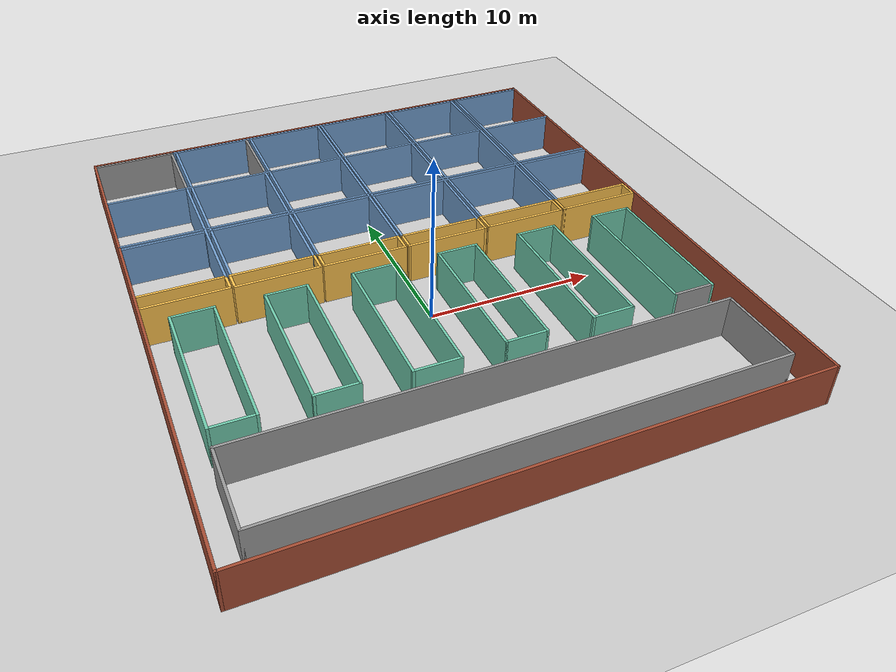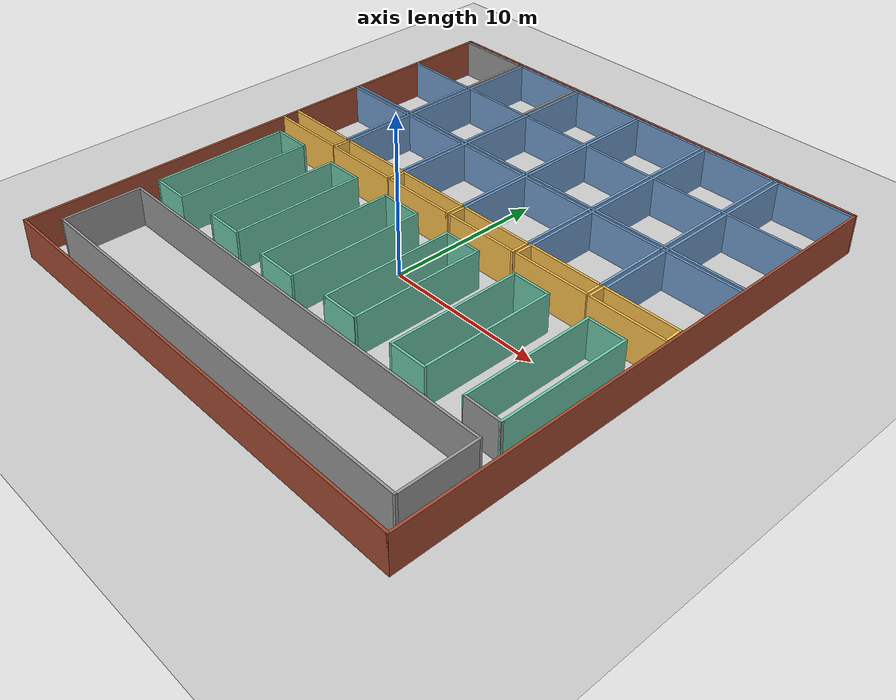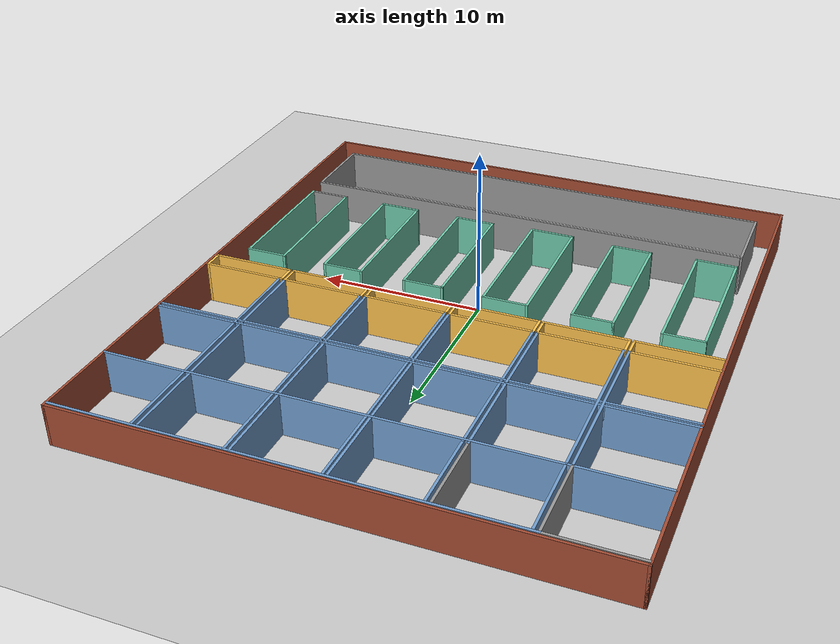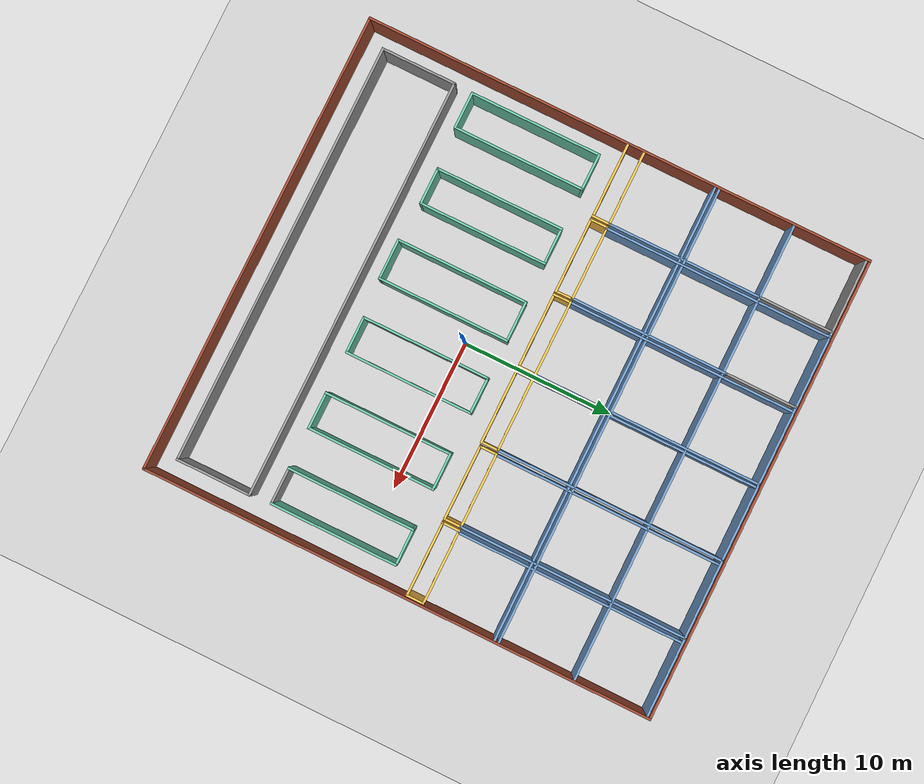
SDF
<sdf version="1.7">
 <world name="default">
  <light name="sun" type="directional">
   <pose>0 0 10 0 -0 0</pose>
   <diffuse>0.8 0.8 0.8 1</diffuse>
   <specular>0.2 0.2 0.2 1</specular>
   <attenuation>
    <range>1000</range>
    <constant>0.9</constant>
    <linear>0.01</linear>
    <quadratic>0.001</quadratic>
   </attenuation>
   <direction>-0.5 0.1 -0.9</direction>
   <spot><inner_angle>0</inner_angle><outer_angle>0</outer_angle><falloff>0</falloff></spot>
  </light>
  <model name="ground_plane">
   <static>1</static>
   <link name="link">
    <collision name="collision">
     <geometry><plane><normal>0 0 1</normal><size>100 100</size></plane></geometry>
     <surface>
      <contact><collide_bitmask>65535</collide_bitmask></contact>
      <friction><ode><mu>100</mu><mu2>50</mu2></ode></friction>
     </surface>
    </collision>
    <visual name="visual">
     <cast_shadows>0</cast_shadows>
     <geometry><plane><normal>0 0 1</normal><size>100 100</size></plane></geometry>
     <material>
      <script><uri>file://media/materials/scripts/gazebo.material</uri><name>Gazebo/Grey</name></script>
     </material>
    </visual>
   </link>
  </model>
  <gravity>0 0 -9.8</gravity>
  <magnetic_field>6e-06 2.3e-05 -4.2e-05</magnetic_field>
  <atmosphere type="adiabatic"/>
  <physics type="ode">
   <max_step_size>0.001</max_step_size>
   <real_time_factor>1</real_time_factor>
   <real_time_update_rate>1000</real_time_update_rate>
  </physics>
  <scene><ambient>0.4 0.4 0.4 1</ambient><background>0.7 0.7 0.7 1</background><shadows>1</shadows></scene>
  <spherical_coordinates>
   <surface_model>EARTH_WGS84</surface_model>
   <latitude_deg>0</latitude_deg>
   <longitude_deg>0</longitude_deg>
   <elevation>0</elevation>
   <heading_deg>0</heading_deg>
  </spherical_coordinates>
  <model name="Logic_Warehouse_Rev2">
   <pose>0.098061 2.99943 0 0 -0 0</pose>
   <link name="Wall_0">
    <collision name="Wall_0_Collision">
     <geometry><box><size>30.75 0.15 2.5</size></box></geometry>
     <pose>0 0 1.25 0 -0 0</pose>
    </collision>
    <visual name="Wall_0_Visual">
     <pose>0 0 1.25 0 -0 0</pose>
     <geometry><box><size>30.75 0.15 2.5</size></box></geometry>
     <material>
      <script><uri>file://media/materials/scripts/gazebo.material</uri><name>Gazebo/Bricks</name></script>
      <ambient>1 1 1 1</ambient>
     </material>
     <meta><layer>0</layer></meta>
    </visual>
    <pose>0 16.925 0 0 -0 0</pose>
   </link>
   <link name="Wall_104">
    <collision name="Wall_104_Collision">
     <geometry><box><size>25.75 0.15 2.5</size></box></geometry>
     <pose>0 0 1.25 0 -0 0</pose>
    </collision>
    <visual name="Wall_104_Visual">
     <pose>0 0 1.25 0 -0 0</pose>
     <geometry><box><size>25.75 0.15 2.5</size></box></geometry>
     <material>
      <script><uri>file://media/materials/scripts/gazebo.material</uri><name>Gazebo/Grey</name></script>
      <ambient>0.447059 0.623529 0.811765 1</ambient>
     </material>
     <meta><layer>0</layer></meta>
    </visual>
    <pose>2.42928 11.8671 0 0 -0 0</pose>
   </link>
   <link name="Wall_106">
    <collision name="Wall_106_Collision">
     <geometry><box><size>25.75 0.15 2.5</size></box></geometry>
     <pose>0 0 1.25 0 -0 0</pose>
    </collision>
    <visual name="Wall_106_Visual">
     <pose>0 0 1.25 0 -0 0</pose>
     <geometry><box><size>25.75 0.15 2.5</size></box></geometry>
     <material>
      <script><uri>file://media/materials/scripts/gazebo.material</uri><name>Gazebo/Grey</name></script>
      <ambient>0.447059 0.623529 0.811765 1</ambient>
     </material>
     <meta><layer>0</layer></meta>
    </visual>
    <pose>2.42928 16.7171 0 0 -0 0</pose>
   </link>
   <link name="Wall_108">
    <collision name="Wall_108_Collision">
     <geometry><box><size>5 0.15 2.5</size></box></geometry>
     <pose>0 0 1.25 0 -0 0</pose>
    </collision>
    <visual name="Wall_108_Visual">
     <pose>0 0 1.25 0 -0 0</pose>
     <geometry><box><size>5 0.15 2.5</size></box></geometry>
     <material>
      <script><uri>file://media/materials/scripts/gazebo.material</uri><name>Gazebo/Grey</name></script>
      <ambient>1 1 1 1</ambient>
     </material>
     <meta><layer>0</layer></meta>
    </visual>
    <pose>-12.7957 16.7171 0 0 -0 3.14159</pose>
   </link>
   <link name="Wall_11">
    <collision name="Wall_11_Collision">
     <geometry><box><size>28 0.15 2.5</size></box></geometry>
     <pose>0 0 1.25 0 -0 0</pose>
    </collision>
    <visual name="Wall_11_Visual">
     <pose>0 0 1.25 0 -0 0</pose>
     <geometry><box><size>28 0.15 2.5</size></box></geometry>
     <material>
      <script><uri>file://media/materials/scripts/gazebo.material</uri><name>Gazebo/Grey</name></script>
      <ambient>1 1 1 1</ambient>
     </material>
     <meta><layer>0</layer></meta>
    </visual>
    <pose>-0.02098 -10.509 0 0 -0 0</pose>
   </link>
   <link name="Wall_110">
    <collision name="Wall_110_Collision">
     <geometry><box><size>5.02332 0.15 2.5</size></box></geometry>
     <pose>0 0 1.25 0 -0 0</pose>
    </collision>
    <visual name="Wall_110_Visual">
     <pose>0 0 1.25 0 -0 0</pose>
     <geometry><box><size>5.02332 0.15 2.5</size></box></geometry>
     <material>
      <script><uri>file://media/materials/scripts/gazebo.material</uri><name>Gazebo/Grey</name></script>
      <ambient>0.447059 0.623529 0.811765 1</ambient>
     </material>
     <meta><layer>0</layer></meta>
    </visual>
    <pose>-10.0548 14.2794 0 0 -0 -1.5708</pose>
   </link>
   <link name="Wall_112">
    <collision name="Wall_112_Collision">
     <geometry><box><size>4.75 0.15 2.5</size></box></geometry>
     <pose>0 0 1.25 0 -0 0</pose>
    </collision>
    <visual name="Wall_112_Visual">
     <pose>0 0 1.25 0 -0 0</pose>
     <geometry><box><size>4.75 0.15 2.5</size></box></geometry>
     <material>
      <script><uri>file://media/materials/scripts/gazebo.material</uri><name>Gazebo/Grey</name></script>
      <ambient>0.447059 0.623529 0.811765 1</ambient>
     </material>
     <meta><layer>0</layer></meta>
    </visual>
    <pose>-5.00284 14.2706 0 0 -0 -1.5708</pose>
   </link>
   <link name="Wall_116">
    <collision name="Wall_116_Collision">
     <geometry><box><size>4.75 0.15 2.5</size></box></geometry>
     <pose>0 0 1.25 0 -0 0</pose>
    </collision>
    <visual name="Wall_116_Visual">
     <pose>0 0 1.25 0 -0 0</pose>
     <geometry><box><size>4.75 0.15 2.5</size></box></geometry>
     <material>
      <script><uri>file://media/materials/scripts/gazebo.material</uri><name>Gazebo/Grey</name></script>
      <ambient>1 1 1 1</ambient>
     </material>
     <meta><layer>0</layer></meta>
    </visual>
    <pose>-5.29983 14.3528 0 0 -0 -1.5708</pose>
   </link>
   <link name="Wall_118">
    <collision name="Wall_118_Collision">
     <geometry><box><size>10.2737 0.15 2.5</size></box></geometry>
     <pose>0 0 1.25 0 -0 0</pose>
    </collision>
    <visual name="Wall_118_Visual">
     <pose>0 0 1.25 0 -0 0</pose>
     <geometry><box><size>10.2737 0.15 2.5</size></box></geometry>
     <material>
      <script><uri>file://media/materials/scripts/gazebo.material</uri><name>Gazebo/Grey</name></script>
      <ambient>0.447059 0.623529 0.811765 1</ambient>
     </material>
     <meta><layer>0</layer></meta>
    </visual>
    <pose>-10.3642 6.80521 0 0 -0 -1.56951</pose>
   </link>
   <link name="Wall_12">
    <collision name="Wall_12_Collision">
     <geometry><box><size>5 0.15 2.5</size></box></geometry>
     <pose>0 0 1.25 0 -0 0</pose>
    </collision>
    <visual name="Wall_12_Visual">
     <pose>0 0 1.25 0 -0 0</pose>
     <geometry><box><size>5 0.15 2.5</size></box></geometry>
     <material>
      <script><uri>file://media/materials/scripts/gazebo.material</uri><name>Gazebo/Grey</name></script>
      <ambient>1 1 1 1</ambient>
     </material>
     <meta><layer>0</layer></meta>
    </visual>
    <pose>13.904 -12.934 0 0 -0 -1.5708</pose>
   </link>
   <link name="Wall_120">
    <collision name="Wall_120_Collision">
     <geometry><box><size>5 0.15 2.5</size></box></geometry>
     <pose>0 0 1.25 0 -0 0</pose>
    </collision>
    <visual name="Wall_120_Visual">
     <pose>0 0 1.25 0 -0 0</pose>
     <geometry><box><size>5 0.15 2.5</size></box></geometry>
     <material>
      <script><uri>file://media/materials/scripts/gazebo.material</uri><name>Gazebo/Grey</name></script>
      <ambient>0.447059 0.623529 0.811765 1</ambient>
     </material>
     <meta><layer>0</layer></meta>
    </visual>
    <pose>-12.8489 6.83112 0 0 -0 0</pose>
   </link>
   <link name="Wall_125">
    <collision name="Wall_125_Collision">
     <geometry><box><size>5 0.15 2.5</size></box></geometry>
     <pose>0 0 1.25 0 -0 0</pose>
    </collision>
    <visual name="Wall_125_Visual">
     <pose>0 0 1.25 0 -0 0</pose>
     <geometry><box><size>5 0.15 2.5</size></box></geometry>
     <material>
      <script><uri>file://media/materials/scripts/gazebo.material</uri><name>Gazebo/Grey</name></script>
      <ambient>0.447059 0.623529 0.811765 1</ambient>
     </material>
     <meta><layer>0</layer></meta>
    </visual>
    <pose>-12.8189 6.54626 0 0 -0 0</pose>
   </link>
   <link name="Wall_127">
    <collision name="Wall_127_Collision">
     <geometry><box><size>25.75 0.15 2.5</size></box></geometry>
     <pose>0 0 1.25 0 -0 0</pose>
    </collision>
    <visual name="Wall_127_Visual">
     <pose>0 0 1.25 0 -0 0</pose>
     <geometry><box><size>25.75 0.15 2.5</size></box></geometry>
     <material>
      <script><uri>file://media/materials/scripts/gazebo.material</uri><name>Gazebo/Grey</name></script>
      <ambient>0.447059 0.623529 0.811765 1</ambient>
     </material>
     <meta><layer>0</layer></meta>
    </visual>
    <pose>2.37609 6.83112 0 0 -0 0</pose>
   </link>
   <link name="Wall_129">
    <collision name="Wall_129_Collision">
     <geometry><box><size>25.75 0.15 2.5</size></box></geometry>
     <pose>0 0 1.25 0 -0 0</pose>
    </collision>
    <visual name="Wall_129_Visual">
     <pose>0 0 1.25 0 -0 0</pose>
     <geometry><box><size>25.75 0.15 2.5</size></box></geometry>
     <material>
      <script><uri>file://media/materials/scripts/gazebo.material</uri><name>Gazebo/Grey</name></script>
      <ambient>0.447059 0.623529 0.811765 1</ambient>
     </material>
     <meta><layer>0</layer></meta>
    </visual>
    <pose>2.40607 6.54626 0 0 -0 0</pose>
   </link>
   <link name="Wall_133">
    <collision name="Wall_133_Collision">
     <geometry><box><size>10.25 0.15 2.5</size></box></geometry>
     <pose>0 0 1.25 0 -0 0</pose>
    </collision>
    <visual name="Wall_133_Visual">
     <pose>0 0 1.25 0 -0 0</pose>
     <geometry><box><size>10.25 0.15 2.5</size></box></geometry>
     <material>
      <script><uri>file://media/materials/scripts/gazebo.material</uri><name>Gazebo/Grey</name></script>
      <ambient>0.447059 0.623529 0.811765 1</ambient>
     </material>
     <meta><layer>0</layer></meta>
    </visual>
    <pose>-10.0548 6.79273 0 0 -0 -1.5708</pose>
   </link>
   <link name="Wall_135">
    <collision name="Wall_135_Collision">
     <geometry><box><size>10.5 0.15 2.5</size></box></geometry>
     <pose>0 0 1.25 0 -0 0</pose>
    </collision>
    <visual name="Wall_135_Visual">
     <pose>0 0 1.25 0 -0 0</pose>
     <geometry><box><size>10.5 0.15 2.5</size></box></geometry>
     <material>
      <script><uri>file://media/materials/scripts/gazebo.material</uri><name>Gazebo/Grey</name></script>
      <ambient>0.447059 0.623529 0.811765 1</ambient>
     </material>
     <meta><layer>0</layer></meta>
    </visual>
    <pose>-5.29983 6.87783 0 0 -0 -1.5708</pose>
   </link>
   <link name="Wall_137">
    <collision name="Wall_137_Collision">
     <geometry><box><size>10.3946 0.15 2.5</size></box></geometry>
     <pose>0 0 1.25 0 -0 0</pose>
    </collision>
    <visual name="Wall_137_Visual">
     <pose>0 0 1.25 0 -0 0</pose>
     <geometry><box><size>10.3946 0.15 2.5</size></box></geometry>
     <material>
      <script><uri>file://media/materials/scripts/gazebo.material</uri><name>Gazebo/Grey</name></script>
      <ambient>0.447059 0.623529 0.811765 1</ambient>
     </material>
     <meta><layer>0</layer></meta>
    </visual>
    <pose>-5.01883 6.8483 0 0 -0 -1.57392</pose>
   </link>
   <link name="Wall_139">
    <collision name="Wall_139_Collision">
     <geometry><box><size>15 0.15 2.5</size></box></geometry>
     <pose>0 0 1.25 0 -0 0</pose>
    </collision>
    <visual name="Wall_139_Visual">
     <pose>0 0 1.25 0 -0 0</pose>
     <geometry><box><size>15 0.15 2.5</size></box></geometry>
     <material>
      <script><uri>file://media/materials/scripts/gazebo.material</uri><name>Gazebo/Grey</name></script>
      <ambient>0.447059 0.623529 0.811765 1</ambient>
     </material>
     <meta><layer>0</layer></meta>
    </visual>
    <pose>-0.155533 9.26037 0 0 -0 -1.5708</pose>
   </link>
   <link name="Wall_144">
    <collision name="Wall_144_Collision">
     <geometry><box><size>15 0.15 2.5</size></box></geometry>
     <pose>0 0 1.25 0 -0 0</pose>
    </collision>
    <visual name="Wall_144_Visual">
     <pose>0 0 1.25 0 -0 0</pose>
     <geometry><box><size>15 0.15 2.5</size></box></geometry>
     <material>
      <script><uri>file://media/materials/scripts/gazebo.material</uri><name>Gazebo/Grey</name></script>
      <ambient>0.447059 0.623529 0.811765 1</ambient>
     </material>
     <meta><layer>0</layer></meta>
    </visual>
    <pose>0.076159 9.14109 0 0 -0 1.5708</pose>
   </link>
   <link name="Wall_146">
    <collision name="Wall_146_Collision">
     <geometry><box><size>15.1294 0.15 2.5</size></box></geometry>
     <pose>0 0 1.25 0 -0 0</pose>
    </collision>
    <visual name="Wall_146_Visual">
     <pose>0 0 1.25 0 -0 0</pose>
     <geometry><box><size>15.1294 0.15 2.5</size></box></geometry>
     <material>
      <script><uri>file://media/materials/scripts/gazebo.material</uri><name>Gazebo/Grey</name></script>
      <ambient>0.447059 0.623529 0.811765 1</ambient>
     </material>
     <meta><layer>0</layer></meta>
    </visual>
    <pose>4.92317 9.20576 0 0 -0 -1.57305</pose>
   </link>
   <link name="Wall_148">
    <collision name="Wall_148_Collision">
     <geometry><box><size>15 0.15 2.5</size></box></geometry>
     <pose>0 0 1.25 0 -0 0</pose>
    </collision>
    <visual name="Wall_148_Visual">
     <pose>0 0 1.25 0 -0 0</pose>
     <geometry><box><size>15 0.15 2.5</size></box></geometry>
     <material>
      <script><uri>file://media/materials/scripts/gazebo.material</uri><name>Gazebo/Grey</name></script>
      <ambient>0.447059 0.623529 0.811765 1</ambient>
     </material>
     <meta><layer>0</layer></meta>
    </visual>
    <pose>5.2222 9.28806 0 0 -0 -1.5708</pose>
   </link>
   <link name="Wall_15">
    <collision name="Wall_15_Collision">
     <geometry><box><size>8.75 0.15 2.5</size></box></geometry>
     <pose>0 0 1.25 0 -0 0</pose>
    </collision>
    <visual name="Wall_15_Visual">
     <pose>0 0 1.25 0 -0 0</pose>
     <geometry><box><size>8.75 0.15 2.5</size></box></geometry>
     <material>
      <script><uri>file://media/materials/scripts/gazebo.material</uri><name>Gazebo/Grey</name></script>
      <ambient>0.435294 0.796078 0.67451 1</ambient>
     </material>
     <meta><layer>0</layer></meta>
    </visual>
    <pose>-13.8931 -4.96958 0 0 -0 -1.5708</pose>
   </link>
   <link name="Wall_150">
    <collision name="Wall_150_Collision">
     <geometry><box><size>15.0896 0.15 2.5</size></box></geometry>
     <pose>0 0 1.25 0 -0 0</pose>
    </collision>
    <visual name="Wall_150_Visual">
     <pose>0 0 1.25 0 -0 0</pose>
     <geometry><box><size>15.0896 0.15 2.5</size></box></geometry>
     <material>
      <script><uri>file://media/materials/scripts/gazebo.material</uri><name>Gazebo/Grey</name></script>
      <ambient>0.447059 0.623529 0.811765 1</ambient>
     </material>
     <meta><layer>0</layer></meta>
    </visual>
    <pose>10.0405 9.22565 0 0 -0 -1.57257</pose>
   </link>
   <link name="Wall_152">
    <collision name="Wall_152_Collision">
     <geometry><box><size>15 0.15 2.5</size></box></geometry>
     <pose>0 0 1.25 0 -0 0</pose>
    </collision>
    <visual name="Wall_152_Visual">
     <pose>0 0 1.25 0 -0 0</pose>
     <geometry><box><size>15 0.15 2.5</size></box></geometry>
     <material>
      <script><uri>file://media/materials/scripts/gazebo.material</uri><name>Gazebo/Grey</name></script>
      <ambient>0.447059 0.623529 0.811765 1</ambient>
     </material>
     <meta><layer>0</layer></meta>
    </visual>
    <pose>10.3888 9.25279 0 0 -0 -1.5708</pose>
   </link>
   <link name="Wall_16">
    <collision name="Wall_16_Collision">
     <geometry><box><size>2.5 0.15 2.5</size></box></geometry>
     <pose>0 0 1.25 0 -0 0</pose>
    </collision>
    <visual name="Wall_16_Visual">
     <pose>0 0 1.25 0 -0 0</pose>
     <geometry><box><size>2.5 0.15 2.5</size></box></geometry>
     <material>
      <script><uri>file://media/materials/scripts/gazebo.material</uri><name>Gazebo/Grey</name></script>
      <ambient>0.435294 0.796078 0.67451 1</ambient>
     </material>
     <meta><layer>0</layer></meta>
    </visual>
    <pose>-12.7181 -9.26958 0 0 -0 0</pose>
   </link>
   <link name="Wall_17">
    <collision name="Wall_17_Collision">
     <geometry><box><size>8.75 0.15 2.5</size></box></geometry>
     <pose>0 0 1.25 0 -0 0</pose>
    </collision>
    <visual name="Wall_17_Visual">
     <pose>0 0 1.25 0 -0 0</pose>
     <geometry><box><size>8.75 0.15 2.5</size></box></geometry>
     <material>
      <script><uri>file://media/materials/scripts/gazebo.material</uri><name>Gazebo/Grey</name></script>
      <ambient>0.435294 0.796078 0.67451 1</ambient>
     </material>
     <meta><layer>0</layer></meta>
    </visual>
    <pose>-11.5431 -4.96958 0 0 -0 1.5708</pose>
   </link>
   <link name="Wall_18">
    <collision name="Wall_18_Collision">
     <geometry><box><size>2.5 0.15 2.5</size></box></geometry>
     <pose>0 0 1.25 0 -0 0</pose>
    </collision>
    <visual name="Wall_18_Visual">
     <pose>0 0 1.25 0 -0 0</pose>
     <geometry><box><size>2.5 0.15 2.5</size></box></geometry>
     <material>
      <script><uri>file://media/materials/scripts/gazebo.material</uri><name>Gazebo/Grey</name></script>
      <ambient>0.435294 0.796078 0.67451 1</ambient>
     </material>
     <meta><layer>0</layer></meta>
    </visual>
    <pose>-12.7181 -0.669579 0 0 -0 3.14159</pose>
   </link>
   <link name="Wall_20">
    <collision name="Wall_20_Collision">
     <geometry><box><size>2.5 0.15 2.5</size></box></geometry>
     <pose>0 0 1.25 0 -0 0</pose>
    </collision>
    <visual name="Wall_20_Visual">
     <pose>0 0 1.25 0 -0 0</pose>
     <geometry><box><size>2.5 0.15 2.5</size></box></geometry>
     <material>
      <script><uri>file://media/materials/scripts/gazebo.material</uri><name>Gazebo/Grey</name></script>
      <ambient>0.435294 0.796078 0.67451 1</ambient>
     </material>
     <meta><layer>0</layer></meta>
    </visual>
    <pose>-7.63761 -0.735618 0 0 -0 0</pose>
   </link>
   <link name="Wall_21">
    <collision name="Wall_21_Collision">
     <geometry><box><size>8.5 0.15 2.5</size></box></geometry>
     <pose>0 0 1.25 0 -0 0</pose>
    </collision>
    <visual name="Wall_21_Visual">
     <pose>0 0 1.25 0 -0 0</pose>
     <geometry><box><size>8.5 0.15 2.5</size></box></geometry>
     <material>
      <script><uri>file://media/materials/scripts/gazebo.material</uri><name>Gazebo/Grey</name></script>
      <ambient>0.435294 0.796078 0.67451 1</ambient>
     </material>
     <meta><layer>0</layer></meta>
    </visual>
    <pose>-6.46261 -4.91062 0 0 -0 -1.5708</pose>
   </link>
   <link name="Wall_22">
    <collision name="Wall_22_Collision">
     <geometry><box><size>2.5 0.15 2.5</size></box></geometry>
     <pose>0 0 1.25 0 -0 0</pose>
    </collision>
    <visual name="Wall_22_Visual">
     <pose>0 0 1.25 0 -0 0</pose>
     <geometry><box><size>2.5 0.15 2.5</size></box></geometry>
     <material>
      <script><uri>file://media/materials/scripts/gazebo.material</uri><name>Gazebo/Grey</name></script>
      <ambient>0.435294 0.796078 0.67451 1</ambient>
     </material>
     <meta><layer>0</layer></meta>
    </visual>
    <pose>-7.63761 -9.08562 0 0 -0 3.14159</pose>
   </link>
   <link name="Wall_23">
    <collision name="Wall_23_Collision">
     <geometry><box><size>8.5 0.15 2.5</size></box></geometry>
     <pose>0 0 1.25 0 -0 0</pose>
    </collision>
    <visual name="Wall_23_Visual">
     <pose>0 0 1.25 0 -0 0</pose>
     <geometry><box><size>8.5 0.15 2.5</size></box></geometry>
     <material>
      <script><uri>file://media/materials/scripts/gazebo.material</uri><name>Gazebo/Grey</name></script>
      <ambient>0.435294 0.796078 0.67451 1</ambient>
     </material>
     <meta><layer>0</layer></meta>
    </visual>
    <pose>-8.81261 -4.91062 0 0 -0 1.5708</pose>
   </link>
   <link name="Wall_25">
    <collision name="Wall_25_Collision">
     <geometry><box><size>2.75 0.15 2.5</size></box></geometry>
     <pose>0 0 1.25 0 -0 0</pose>
    </collision>
    <visual name="Wall_25_Visual">
     <pose>0 0 1.25 0 -0 0</pose>
     <geometry><box><size>2.75 0.15 2.5</size></box></geometry>
     <material>
      <script><uri>file://media/materials/scripts/gazebo.material</uri><name>Gazebo/Grey</name></script>
      <ambient>0.435294 0.796078 0.67451 1</ambient>
     </material>
     <meta><layer>0</layer></meta>
    </visual>
    <pose>-2.55231 -0.705372 0 0 -0 0</pose>
   </link>
   <link name="Wall_26">
    <collision name="Wall_26_Collision">
     <geometry><box><size>8.75 0.15 2.5</size></box></geometry>
     <pose>0 0 1.25 0 -0 0</pose>
    </collision>
    <visual name="Wall_26_Visual">
     <pose>0 0 1.25 0 -0 0</pose>
     <geometry><box><size>8.75 0.15 2.5</size></box></geometry>
     <material>
      <script><uri>file://media/materials/scripts/gazebo.material</uri><name>Gazebo/Grey</name></script>
      <ambient>0.435294 0.796078 0.67451 1</ambient>
     </material>
     <meta><layer>0</layer></meta>
    </visual>
    <pose>-1.25231 -5.00537 0 0 -0 -1.5708</pose>
   </link>
   <link name="Wall_27">
    <collision name="Wall_27_Collision">
     <geometry><box><size>2.75 0.15 2.5</size></box></geometry>
     <pose>0 0 1.25 0 -0 0</pose>
    </collision>
    <visual name="Wall_27_Visual">
     <pose>0 0 1.25 0 -0 0</pose>
     <geometry><box><size>2.75 0.15 2.5</size></box></geometry>
     <material>
      <script><uri>file://media/materials/scripts/gazebo.material</uri><name>Gazebo/Grey</name></script>
      <ambient>0.435294 0.796078 0.67451 1</ambient>
     </material>
     <meta><layer>0</layer></meta>
    </visual>
    <pose>-2.55231 -9.30537 0 0 -0 3.14159</pose>
   </link>
   <link name="Wall_28">
    <collision name="Wall_28_Collision">
     <geometry><box><size>8.75 0.15 2.5</size></box></geometry>
     <pose>0 0 1.25 0 -0 0</pose>
    </collision>
    <visual name="Wall_28_Visual">
     <pose>0 0 1.25 0 -0 0</pose>
     <geometry><box><size>8.75 0.15 2.5</size></box></geometry>
     <material>
      <script><uri>file://media/materials/scripts/gazebo.material</uri><name>Gazebo/Grey</name></script>
      <ambient>0.435294 0.796078 0.67451 1</ambient>
     </material>
     <meta><layer>0</layer></meta>
    </visual>
    <pose>-3.85231 -5.00537 0 0 -0 1.5708</pose>
   </link>
   <link name="Wall_30">
    <collision name="Wall_30_Collision">
     <geometry><box><size>2.5 0.15 2.5</size></box></geometry>
     <pose>0 0 1.25 0 -0 0</pose>
    </collision>
    <visual name="Wall_30_Visual">
     <pose>0 0 1.25 0 -0 0</pose>
     <geometry><box><size>2.5 0.15 2.5</size></box></geometry>
     <material>
      <script><uri>file://media/materials/scripts/gazebo.material</uri><name>Gazebo/Grey</name></script>
      <ambient>0.435294 0.796078 0.67451 1</ambient>
     </material>
     <meta><layer>0</layer></meta>
    </visual>
    <pose>2.46447 -0.750741 0 0 -0 0</pose>
   </link>
   <link name="Wall_31">
    <collision name="Wall_31_Collision">
     <geometry><box><size>8.5 0.15 2.5</size></box></geometry>
     <pose>0 0 1.25 0 -0 0</pose>
    </collision>
    <visual name="Wall_31_Visual">
     <pose>0 0 1.25 0 -0 0</pose>
     <geometry><box><size>8.5 0.15 2.5</size></box></geometry>
     <material>
      <script><uri>file://media/materials/scripts/gazebo.material</uri><name>Gazebo/Grey</name></script>
      <ambient>0.435294 0.796078 0.67451 1</ambient>
     </material>
     <meta><layer>0</layer></meta>
    </visual>
    <pose>3.63947 -4.92574 0 0 -0 -1.5708</pose>
   </link>
   <link name="Wall_33">
    <collision name="Wall_33_Collision">
     <geometry><box><size>8.5 0.15 2.5</size></box></geometry>
     <pose>0 0 1.25 0 -0 0</pose>
    </collision>
    <visual name="Wall_33_Visual">
     <pose>0 0 1.25 0 -0 0</pose>
     <geometry><box><size>8.5 0.15 2.5</size></box></geometry>
     <material>
      <script><uri>file://media/materials/scripts/gazebo.material</uri><name>Gazebo/Grey</name></script>
      <ambient>0.435294 0.796078 0.67451 1</ambient>
     </material>
     <meta><layer>0</layer></meta>
    </visual>
    <pose>1.28947 -4.92574 0 0 -0 -1.5708</pose>
   </link>
   <link name="Wall_34">
    <collision name="Wall_34_Collision">
     <geometry><box><size>2.5 0.15 2.5</size></box></geometry>
     <pose>0 0 1.25 0 -0 0</pose>
    </collision>
    <visual name="Wall_34_Visual">
     <pose>0 0 1.25 0 -0 0</pose>
     <geometry><box><size>2.5 0.15 2.5</size></box></geometry>
     <material>
      <script><uri>file://media/materials/scripts/gazebo.material</uri><name>Gazebo/Grey</name></script>
      <ambient>0.435294 0.796078 0.67451 1</ambient>
     </material>
     <meta><layer>0</layer></meta>
    </visual>
    <pose>2.46447 -9.10074 0 0 -0 0</pose>
   </link>
   <link name="Wall_36">
    <collision name="Wall_36_Collision">
     <geometry><box><size>2.5 0.15 2.5</size></box></geometry>
     <pose>0 0 1.25 0 -0 0</pose>
    </collision>
    <visual name="Wall_36_Visual">
     <pose>0 0 1.25 0 -0 0</pose>
     <geometry><box><size>2.5 0.15 2.5</size></box></geometry>
     <material>
      <script><uri>file://media/materials/scripts/gazebo.material</uri><name>Gazebo/Grey</name></script>
      <ambient>0.435294 0.796078 0.67451 1</ambient>
     </material>
     <meta><layer>0</layer></meta>
    </visual>
    <pose>7.56088 -0.750741 0 0 -0 0</pose>
   </link>
   <link name="Wall_37">
    <collision name="Wall_37_Collision">
     <geometry><box><size>8.5 0.15 2.5</size></box></geometry>
     <pose>0 0 1.25 0 -0 0</pose>
    </collision>
    <visual name="Wall_37_Visual">
     <pose>0 0 1.25 0 -0 0</pose>
     <geometry><box><size>8.5 0.15 2.5</size></box></geometry>
     <material>
      <script><uri>file://media/materials/scripts/gazebo.material</uri><name>Gazebo/Grey</name></script>
      <ambient>0.435294 0.796078 0.67451 1</ambient>
     </material>
     <meta><layer>0</layer></meta>
    </visual>
    <pose>8.73588 -4.92574 0 0 -0 -1.5708</pose>
   </link>
   <link name="Wall_38">
    <collision name="Wall_38_Collision">
     <geometry><box><size>2.5 0.15 2.5</size></box></geometry>
     <pose>0 0 1.25 0 -0 0</pose>
    </collision>
    <visual name="Wall_38_Visual">
     <pose>0 0 1.25 0 -0 0</pose>
     <geometry><box><size>2.5 0.15 2.5</size></box></geometry>
     <material>
      <script><uri>file://media/materials/scripts/gazebo.material</uri><name>Gazebo/Grey</name></script>
      <ambient>0.435294 0.796078 0.67451 1</ambient>
     </material>
     <meta><layer>0</layer></meta>
    </visual>
    <pose>7.56088 -9.10074 0 0 -0 3.14159</pose>
   </link>
   <link name="Wall_39">
    <collision name="Wall_39_Collision">
     <geometry><box><size>8.5 0.15 2.5</size></box></geometry>
     <pose>0 0 1.25 0 -0 0</pose>
    </collision>
    <visual name="Wall_39_Visual">
     <pose>0 0 1.25 0 -0 0</pose>
     <geometry><box><size>8.5 0.15 2.5</size></box></geometry>
     <material>
      <script><uri>file://media/materials/scripts/gazebo.material</uri><name>Gazebo/Grey</name></script>
      <ambient>0.435294 0.796078 0.67451 1</ambient>
     </material>
     <meta><layer>0</layer></meta>
    </visual>
    <pose>6.38588 -4.92574 0 0 -0 1.5708</pose>
   </link>
   <link name="Wall_4">
    <collision name="Wall_4_Collision">
     <geometry><box><size>34 0.15 2.5</size></box></geometry>
     <pose>0 0 1.25 0 -0 0</pose>
    </collision>
    <visual name="Wall_4_Visual">
     <pose>0 0 1.25 0 -0 0</pose>
     <geometry><box><size>34 0.15 2.5</size></box></geometry>
     <material>
      <script><uri>file://media/materials/scripts/gazebo.material</uri><name>Gazebo/Bricks</name></script>
      <ambient>1 1 1 1</ambient>
     </material>
     <meta><layer>0</layer></meta>
    </visual>
    <pose>-15.3 -0 0 0 -0 -1.5708</pose>
   </link>
   <link name="Wall_41">
    <collision name="Wall_41_Collision">
     <geometry><box><size>2.5 0.15 2.5</size></box></geometry>
     <pose>0 0 1.25 0 -0 0</pose>
    </collision>
    <visual name="Wall_41_Visual">
     <pose>0 0 1.25 0 -0 0</pose>
     <geometry><box><size>2.5 0.15 2.5</size></box></geometry>
     <material>
      <script><uri>file://media/materials/scripts/gazebo.material</uri><name>Gazebo/Grey</name></script>
      <ambient>0.435294 0.796078 0.67451 1</ambient>
     </material>
     <meta><layer>0</layer></meta>
    </visual>
    <pose>12.6119 -0.750741 0 0 -0 0</pose>
   </link>
   <link name="Wall_42">
    <collision name="Wall_42_Collision">
     <geometry><box><size>8.5 0.15 2.5</size></box></geometry>
     <pose>0 0 1.25 0 -0 0</pose>
    </collision>
    <visual name="Wall_42_Visual">
     <pose>0 0 1.25 0 -0 0</pose>
     <geometry><box><size>8.5 0.15 2.5</size></box></geometry>
     <material>
      <script><uri>file://media/materials/scripts/gazebo.material</uri><name>Gazebo/Grey</name></script>
      <ambient>0.435294 0.796078 0.67451 1</ambient>
     </material>
     <meta><layer>0</layer></meta>
    </visual>
    <pose>13.7869 -4.92574 0 0 -0 -1.5708</pose>
   </link>
   <link name="Wall_45">
    <collision name="Wall_45_Collision">
     <geometry><box><size>8.5 0.15 2.5</size></box></geometry>
     <pose>0 0 1.25 0 -0 0</pose>
    </collision>
    <visual name="Wall_45_Visual">
     <pose>0 0 1.25 0 -0 0</pose>
     <geometry><box><size>8.5 0.15 2.5</size></box></geometry>
     <material>
      <script><uri>file://media/materials/scripts/gazebo.material</uri><name>Gazebo/Grey</name></script>
      <ambient>0.435294 0.796078 0.67451 1</ambient>
     </material>
     <meta><layer>0</layer></meta>
    </visual>
    <pose>11.4369 -4.92574 0 0 -0 -1.5708</pose>
   </link>
   <link name="Wall_46">
    <collision name="Wall_46_Collision">
     <geometry><box><size>2.5 0.15 2.5</size></box></geometry>
     <pose>0 0 1.25 0 -0 0</pose>
    </collision>
    <visual name="Wall_46_Visual">
     <pose>0 0 1.25 0 -0 0</pose>
     <geometry><box><size>2.5 0.15 2.5</size></box></geometry>
     <material>
      <script><uri>file://media/materials/scripts/gazebo.material</uri><name>Gazebo/Grey</name></script>
      <ambient>1 1 1 1</ambient>
     </material>
     <meta><layer>0</layer></meta>
    </visual>
    <pose>12.6119 -9.10074 0 0 -0 0</pose>
   </link>
   <link name="Wall_48">
    <collision name="Wall_48_Collision">
     <geometry><box><size>5 0.15 2.5</size></box></geometry>
     <pose>0 0 1.25 0 -0 0</pose>
    </collision>
    <visual name="Wall_48_Visual">
     <pose>0 0 1.25 0 -0 0</pose>
     <geometry><box><size>5 0.15 2.5</size></box></geometry>
     <material>
      <script><uri>file://media/materials/scripts/gazebo.material</uri><name>Gazebo/Grey</name></script>
      <ambient>1 0.764706 0.305882 1</ambient>
     </material>
     <meta><layer>0</layer></meta>
    </visual>
    <pose>-12.7827 1.74337 0 0 -0 0</pose>
   </link>
   <link name="Wall_49">
    <collision name="Wall_49_Collision">
     <geometry><box><size>1.25 0.15 2.5</size></box></geometry>
     <pose>0 0 1.25 0 -0 0</pose>
    </collision>
    <visual name="Wall_49_Visual">
     <pose>0 0 1.25 0 -0 0</pose>
     <geometry><box><size>1.25 0.15 2.5</size></box></geometry>
     <material>
      <script><uri>file://media/materials/scripts/gazebo.material</uri><name>Gazebo/Grey</name></script>
      <ambient>1 0.764706 0.305882 1</ambient>
     </material>
     <meta><layer>0</layer></meta>
    </visual>
    <pose>-10.3577 1.19337 0 0 -0 -1.5708</pose>
   </link>
   <link name="Wall_5">
    <collision name="Wall_5_Collision">
     <geometry><box><size>30.75 0.15 2.5</size></box></geometry>
     <pose>0 0 1.25 0 -0 0</pose>
    </collision>
    <visual name="Wall_5_Visual">
     <pose>0 0 1.25 0 -0 0</pose>
     <geometry><box><size>30.75 0.15 2.5</size></box></geometry>
     <material>
      <script><uri>file://media/materials/scripts/gazebo.material</uri><name>Gazebo/Bricks</name></script>
      <ambient>1 1 1 1</ambient>
     </material>
     <meta><layer>0</layer></meta>
    </visual>
    <pose>0 -16.925 0 0 -0 0</pose>
   </link>
   <link name="Wall_50">
    <collision name="Wall_50_Collision">
     <geometry><box><size>5 0.15 2.5</size></box></geometry>
     <pose>0 0 1.25 0 -0 0</pose>
    </collision>
    <visual name="Wall_50_Visual">
     <pose>0 0 1.25 0 -0 0</pose>
     <geometry><box><size>5 0.15 2.5</size></box></geometry>
     <material>
      <script><uri>file://media/materials/scripts/gazebo.material</uri><name>Gazebo/Grey</name></script>
      <ambient>1 0.764706 0.305882 1</ambient>
     </material>
     <meta><layer>0</layer></meta>
    </visual>
    <pose>-12.7827 0.643366 0 0 -0 3.14159</pose>
   </link>
   <link name="Wall_57">
    <collision name="Wall_57_Collision">
     <geometry><box><size>1.25 0.15 2.5</size></box></geometry>
     <pose>0 0 1.25 0 -0 0</pose>
    </collision>
    <visual name="Wall_57_Visual">
     <pose>0 0 1.25 0 -0 0</pose>
     <geometry><box><size>1.25 0.15 2.5</size></box></geometry>
     <material>
      <script><uri>file://media/materials/scripts/gazebo.material</uri><name>Gazebo/Grey</name></script>
      <ambient>1 0.764706 0.305882 1</ambient>
     </material>
     <meta><layer>0</layer></meta>
    </visual>
    <pose>-10.116 1.17604 0 0 -0 -1.5708</pose>
   </link>
   <link name="Wall_58">
    <collision name="Wall_58_Collision">
     <geometry><box><size>5 0.15 2.5</size></box></geometry>
     <pose>0 0 1.25 0 -0 0</pose>
    </collision>
    <visual name="Wall_58_Visual">
     <pose>0 0 1.25 0 -0 0</pose>
     <geometry><box><size>5 0.15 2.5</size></box></geometry>
     <material>
      <script><uri>file://media/materials/scripts/gazebo.material</uri><name>Gazebo/Grey</name></script>
      <ambient>1 0.764706 0.305882 1</ambient>
     </material>
     <meta><layer>0</layer></meta>
    </visual>
    <pose>-7.69096 0.626037 0 0 -0 0</pose>
   </link>
   <link name="Wall_59">
    <collision name="Wall_59_Collision">
     <geometry><box><size>1.25 0.15 2.5</size></box></geometry>
     <pose>0 0 1.25 0 -0 0</pose>
    </collision>
    <visual name="Wall_59_Visual">
     <pose>0 0 1.25 0 -0 0</pose>
     <geometry><box><size>1.25 0.15 2.5</size></box></geometry>
     <material>
      <script><uri>file://media/materials/scripts/gazebo.material</uri><name>Gazebo/Grey</name></script>
      <ambient>1 0.764706 0.305882 1</ambient>
     </material>
     <meta><layer>0</layer></meta>
    </visual>
    <pose>-5.26596 1.17604 0 0 -0 1.5708</pose>
   </link>
   <link name="Wall_6">
    <collision name="Wall_6_Collision">
     <geometry><box><size>34 0.15 2.5</size></box></geometry>
     <pose>0 0 1.25 0 -0 0</pose>
    </collision>
    <visual name="Wall_6_Visual">
     <pose>0 0 1.25 0 -0 0</pose>
     <geometry><box><size>34 0.15 2.5</size></box></geometry>
     <material>
      <script><uri>file://media/materials/scripts/gazebo.material</uri><name>Gazebo/Bricks</name></script>
      <ambient>1 1 1 1</ambient>
     </material>
     <meta><layer>0</layer></meta>
    </visual>
    <pose>15.3 -0 0 0 -0 1.5708</pose>
   </link>
   <link name="Wall_60">
    <collision name="Wall_60_Collision">
     <geometry><box><size>5 0.15 2.5</size></box></geometry>
     <pose>0 0 1.25 0 -0 0</pose>
    </collision>
    <visual name="Wall_60_Visual">
     <pose>0 0 1.25 0 -0 0</pose>
     <geometry><box><size>5 0.15 2.5</size></box></geometry>
     <material>
      <script><uri>file://media/materials/scripts/gazebo.material</uri><name>Gazebo/Grey</name></script>
      <ambient>1 0.764706 0.305882 1</ambient>
     </material>
     <meta><layer>0</layer></meta>
    </visual>
    <pose>-7.69096 1.72604 0 0 -0 3.14159</pose>
   </link>
   <link name="Wall_62">
    <collision name="Wall_62_Collision">
     <geometry><box><size>1.25 0.15 2.5</size></box></geometry>
     <pose>0 0 1.25 0 -0 0</pose>
    </collision>
    <visual name="Wall_62_Visual">
     <pose>0 0 1.25 0 -0 0</pose>
     <geometry><box><size>1.25 0.15 2.5</size></box></geometry>
     <material>
      <script><uri>file://media/materials/scripts/gazebo.material</uri><name>Gazebo/Grey</name></script>
      <ambient>1 0.764706 0.305882 1</ambient>
     </material>
     <meta><layer>0</layer></meta>
    </visual>
    <pose>-5.03482 1.17604 0 0 -0 -1.5708</pose>
   </link>
   <link name="Wall_63">
    <collision name="Wall_63_Collision">
     <geometry><box><size>5 0.15 2.5</size></box></geometry>
     <pose>0 0 1.25 0 -0 0</pose>
    </collision>
    <visual name="Wall_63_Visual">
     <pose>0 0 1.25 0 -0 0</pose>
     <geometry><box><size>5 0.15 2.5</size></box></geometry>
     <material>
      <script><uri>file://media/materials/scripts/gazebo.material</uri><name>Gazebo/Grey</name></script>
      <ambient>1 0.764706 0.305882 1</ambient>
     </material>
     <meta><layer>0</layer></meta>
    </visual>
    <pose>-2.60982 0.626037 0 0 -0 0</pose>
   </link>
   <link name="Wall_64">
    <collision name="Wall_64_Collision">
     <geometry><box><size>1.25 0.15 2.5</size></box></geometry>
     <pose>0 0 1.25 0 -0 0</pose>
    </collision>
    <visual name="Wall_64_Visual">
     <pose>0 0 1.25 0 -0 0</pose>
     <geometry><box><size>1.25 0.15 2.5</size></box></geometry>
     <material>
      <script><uri>file://media/materials/scripts/gazebo.material</uri><name>Gazebo/Grey</name></script>
      <ambient>1 0.764706 0.305882 1</ambient>
     </material>
     <meta><layer>0</layer></meta>
    </visual>
    <pose>-0.184818 1.17604 0 0 -0 1.5708</pose>
   </link>
   <link name="Wall_65">
    <collision name="Wall_65_Collision">
     <geometry><box><size>5 0.15 2.5</size></box></geometry>
     <pose>0 0 1.25 0 -0 0</pose>
    </collision>
    <visual name="Wall_65_Visual">
     <pose>0 0 1.25 0 -0 0</pose>
     <geometry><box><size>5 0.15 2.5</size></box></geometry>
     <material>
      <script><uri>file://media/materials/scripts/gazebo.material</uri><name>Gazebo/Grey</name></script>
      <ambient>1 0.764706 0.305882 1</ambient>
     </material>
     <meta><layer>0</layer></meta>
    </visual>
    <pose>-2.60982 1.72604 0 0 -0 3.14159</pose>
   </link>
   <link name="Wall_68">
    <collision name="Wall_68_Collision">
     <geometry><box><size>1.25 0.15 2.5</size></box></geometry>
     <pose>0 0 1.25 0 -0 0</pose>
    </collision>
    <visual name="Wall_68_Visual">
     <pose>0 0 1.25 0 -0 0</pose>
     <geometry><box><size>1.25 0.15 2.5</size></box></geometry>
     <material>
      <script><uri>file://media/materials/scripts/gazebo.material</uri><name>Gazebo/Grey</name></script>
      <ambient>1 0.764706 0.305882 1</ambient>
     </material>
     <meta><layer>0</layer></meta>
    </visual>
    <pose>4.90627 1.16609 0 0 -0 -1.5708</pose>
   </link>
   <link name="Wall_71">
    <collision name="Wall_71_Collision">
     <geometry><box><size>5 0.15 2.5</size></box></geometry>
     <pose>0 0 1.25 0 -0 0</pose>
    </collision>
    <visual name="Wall_71_Visual">
     <pose>0 0 1.25 0 -0 0</pose>
     <geometry><box><size>5 0.15 2.5</size></box></geometry>
     <material>
      <script><uri>file://media/materials/scripts/gazebo.material</uri><name>Gazebo/Grey</name></script>
      <ambient>1 0.764706 0.305882 1</ambient>
     </material>
     <meta><layer>0</layer></meta>
    </visual>
    <pose>2.50116 0.616094 0 0 -0 0</pose>
   </link>
   <link name="Wall_77">
    <collision name="Wall_77_Collision">
     <geometry><box><size>1.25 0.15 2.5</size></box></geometry>
     <pose>0 0 1.25 0 -0 0</pose>
    </collision>
    <visual name="Wall_77_Visual">
     <pose>0 0 1.25 0 -0 0</pose>
     <geometry><box><size>1.25 0.15 2.5</size></box></geometry>
     <material>
      <script><uri>file://media/materials/scripts/gazebo.material</uri><name>Gazebo/Grey</name></script>
      <ambient>1 0.764706 0.305882 1</ambient>
     </material>
     <meta><layer>0</layer></meta>
    </visual>
    <pose>0.076159 1.16609 0 0 -0 1.5708</pose>
   </link>
   <link name="Wall_78">
    <collision name="Wall_78_Collision">
     <geometry><box><size>4.98011 0.15 2.5</size></box></geometry>
     <pose>0 0 1.25 0 -0 0</pose>
    </collision>
    <visual name="Wall_78_Visual">
     <pose>0 0 1.25 0 -0 0</pose>
     <geometry><box><size>4.98011 0.15 2.5</size></box></geometry>
     <material>
      <script><uri>file://media/materials/scripts/gazebo.material</uri><name>Gazebo/Grey</name></script>
      <ambient>1 0.764706 0.305882 1</ambient>
     </material>
     <meta><layer>0</layer></meta>
    </visual>
    <pose>2.49121 1.71609 0 0 -0 0</pose>
   </link>
   <link name="Wall_8">
    <collision name="Wall_8_Collision">
     <geometry><box><size>5 0.15 2.5</size></box></geometry>
     <pose>0 0 1.25 0 -0 0</pose>
    </collision>
    <visual name="Wall_8_Visual">
     <pose>0 0 1.25 0 -0 0</pose>
     <geometry><box><size>5 0.15 2.5</size></box></geometry>
     <material>
      <script><uri>file://media/materials/scripts/gazebo.material</uri><name>Gazebo/Grey</name></script>
      <ambient>1 1 1 1</ambient>
     </material>
     <meta><layer>0</layer></meta>
    </visual>
    <pose>-13.946 -12.934 0 0 -0 -1.5708</pose>
   </link>
   <link name="Wall_81">
    <collision name="Wall_81_Collision">
     <geometry><box><size>1.25 0.15 2.5</size></box></geometry>
     <pose>0 0 1.25 0 -0 0</pose>
    </collision>
    <visual name="Wall_81_Visual">
     <pose>0 0 1.25 0 -0 0</pose>
     <geometry><box><size>1.25 0.15 2.5</size></box></geometry>
     <material>
      <script><uri>file://media/materials/scripts/gazebo.material</uri><name>Gazebo/Grey</name></script>
      <ambient>1 0.764706 0.305882 1</ambient>
     </material>
     <meta><layer>0</layer></meta>
    </visual>
    <pose>5.17719 1.20587 0 0 -0 -1.5708</pose>
   </link>
   <link name="Wall_82">
    <collision name="Wall_82_Collision">
     <geometry><box><size>5 0.15 2.5</size></box></geometry>
     <pose>0 0 1.25 0 -0 0</pose>
    </collision>
    <visual name="Wall_82_Visual">
     <pose>0 0 1.25 0 -0 0</pose>
     <geometry><box><size>5 0.15 2.5</size></box></geometry>
     <material>
      <script><uri>file://media/materials/scripts/gazebo.material</uri><name>Gazebo/Grey</name></script>
      <ambient>1 0.764706 0.305882 1</ambient>
     </material>
     <meta><layer>0</layer></meta>
    </visual>
    <pose>7.60219 0.655868 0 0 -0 0</pose>
   </link>
   <link name="Wall_83">
    <collision name="Wall_83_Collision">
     <geometry><box><size>1.25 0.15 2.5</size></box></geometry>
     <pose>0 0 1.25 0 -0 0</pose>
    </collision>
    <visual name="Wall_83_Visual">
     <pose>0 0 1.25 0 -0 0</pose>
     <geometry><box><size>1.25 0.15 2.5</size></box></geometry>
     <material>
      <script><uri>file://media/materials/scripts/gazebo.material</uri><name>Gazebo/Grey</name></script>
      <ambient>1 0.764706 0.305882 1</ambient>
     </material>
     <meta><layer>0</layer></meta>
    </visual>
    <pose>10.0272 1.20587 0 0 -0 1.5708</pose>
   </link>
   <link name="Wall_84">
    <collision name="Wall_84_Collision">
     <geometry><box><size>5 0.15 2.5</size></box></geometry>
     <pose>0 0 1.25 0 -0 0</pose>
    </collision>
    <visual name="Wall_84_Visual">
     <pose>0 0 1.25 0 -0 0</pose>
     <geometry><box><size>5 0.15 2.5</size></box></geometry>
     <material>
      <script><uri>file://media/materials/scripts/gazebo.material</uri><name>Gazebo/Grey</name></script>
      <ambient>1 0.764706 0.305882 1</ambient>
     </material>
     <meta><layer>0</layer></meta>
    </visual>
    <pose>7.60219 1.75587 0 0 -0 3.14159</pose>
   </link>
   <link name="Wall_86">
    <collision name="Wall_86_Collision">
     <geometry><box><size>5 0.15 2.5</size></box></geometry>
     <pose>0 0 1.25 0 -0 0</pose>
    </collision>
    <visual name="Wall_86_Visual">
     <pose>0 0 1.25 0 -0 0</pose>
     <geometry><box><size>5 0.15 2.5</size></box></geometry>
     <material>
      <script><uri>file://media/materials/scripts/gazebo.material</uri><name>Gazebo/Grey</name></script>
      <ambient>1 0.764706 0.305882 1</ambient>
     </material>
     <meta><layer>0</layer></meta>
    </visual>
    <pose>12.6933 1.75587 0 0 -0 0</pose>
   </link>
   <link name="Wall_87">
    <collision name="Wall_87_Collision">
     <geometry><box><size>1.25 0.15 2.5</size></box></geometry>
     <pose>0 0 1.25 0 -0 0</pose>
    </collision>
    <visual name="Wall_87_Visual">
     <pose>0 0 1.25 0 -0 0</pose>
     <geometry><box><size>1.25 0.15 2.5</size></box></geometry>
     <material>
      <script><uri>file://media/materials/scripts/gazebo.material</uri><name>Gazebo/Grey</name></script>
      <ambient>1 0.764706 0.305882 1</ambient>
     </material>
     <meta><layer>0</layer></meta>
    </visual>
    <pose>15.1183 1.20587 0 0 -0 -1.5708</pose>
   </link>
   <link name="Wall_89">
    <collision name="Wall_89_Collision">
     <geometry><box><size>1.25 0.15 2.5</size></box></geometry>
     <pose>0 0 1.25 0 -0 0</pose>
    </collision>
    <visual name="Wall_89_Visual">
     <pose>0 0 1.25 0 -0 0</pose>
     <geometry><box><size>1.25 0.15 2.5</size></box></geometry>
     <material>
      <script><uri>file://media/materials/scripts/gazebo.material</uri><name>Gazebo/Grey</name></script>
      <ambient>1 0.764706 0.305882 1</ambient>
     </material>
     <meta><layer>0</layer></meta>
    </visual>
    <pose>10.2683 1.20587 0 0 -0 -1.5708</pose>
   </link>
   <link name="Wall_9">
    <collision name="Wall_9_Collision">
     <geometry><box><size>28 0.15 2.5</size></box></geometry>
     <pose>0 0 1.25 0 -0 0</pose>
    </collision>
    <visual name="Wall_9_Visual">
     <pose>0 0 1.25 0 -0 0</pose>
     <geometry><box><size>28 0.15 2.5</size></box></geometry>
     <material>
      <script><uri>file://media/materials/scripts/gazebo.material</uri><name>Gazebo/Grey</name></script>
      <ambient>1 1 1 1</ambient>
     </material>
     <meta><layer>0</layer></meta>
    </visual>
    <pose>-0.02098 -15.359 0 0 -0 0</pose>
   </link>
   <link name="Wall_90">
    <collision name="Wall_90_Collision">
     <geometry><box><size>5 0.15 2.5</size></box></geometry>
     <pose>0 0 1.25 0 -0 0</pose>
    </collision>
    <visual name="Wall_90_Visual">
     <pose>0 0 1.25 0 -0 0</pose>
     <geometry><box><size>5 0.15 2.5</size></box></geometry>
     <material>
      <script><uri>file://media/materials/scripts/gazebo.material</uri><name>Gazebo/Grey</name></script>
      <ambient>1 0.764706 0.305882 1</ambient>
     </material>
     <meta><layer>0</layer></meta>
    </visual>
    <pose>12.6933 0.655868 0 0 -0 0</pose>
   </link>
   <link name="Wall_92">
    <collision name="Wall_92_Collision">
     <geometry><box><size>5 0.15 2.5</size></box></geometry>
     <pose>0 0 1.25 0 -0 0</pose>
    </collision>
    <visual name="Wall_92_Visual">
     <pose>0 0 1.25 0 -0 0</pose>
     <geometry><box><size>5 0.15 2.5</size></box></geometry>
     <material>
      <script><uri>file://media/materials/scripts/gazebo.material</uri><name>Gazebo/Grey</name></script>
      <ambient>0.447059 0.623529 0.811765 1</ambient>
     </material>
     <meta><layer>0</layer></meta>
    </visual>
    <pose>-12.7957 11.8671 0 0 -0 0</pose>
   </link>
   <link name="Wall_93">
    <collision name="Wall_93_Collision">
     <geometry><box><size>5 0.15 2.5</size></box></geometry>
     <pose>0 0 1.25 0 -0 0</pose>
    </collision>
    <visual name="Wall_93_Visual">
     <pose>0 0 1.25 0 -0 0</pose>
     <geometry><box><size>5 0.15 2.5</size></box></geometry>
     <material>
      <script><uri>file://media/materials/scripts/gazebo.material</uri><name>Gazebo/Grey</name></script>
      <ambient>1 1 1 1</ambient>
     </material>
     <meta><layer>0</layer></meta>
    </visual>
    <pose>-10.3707 14.292 0 0 -0 1.5708</pose>
   </link>
   <static>1</static>
  </model>
 </world>
</sdf>
